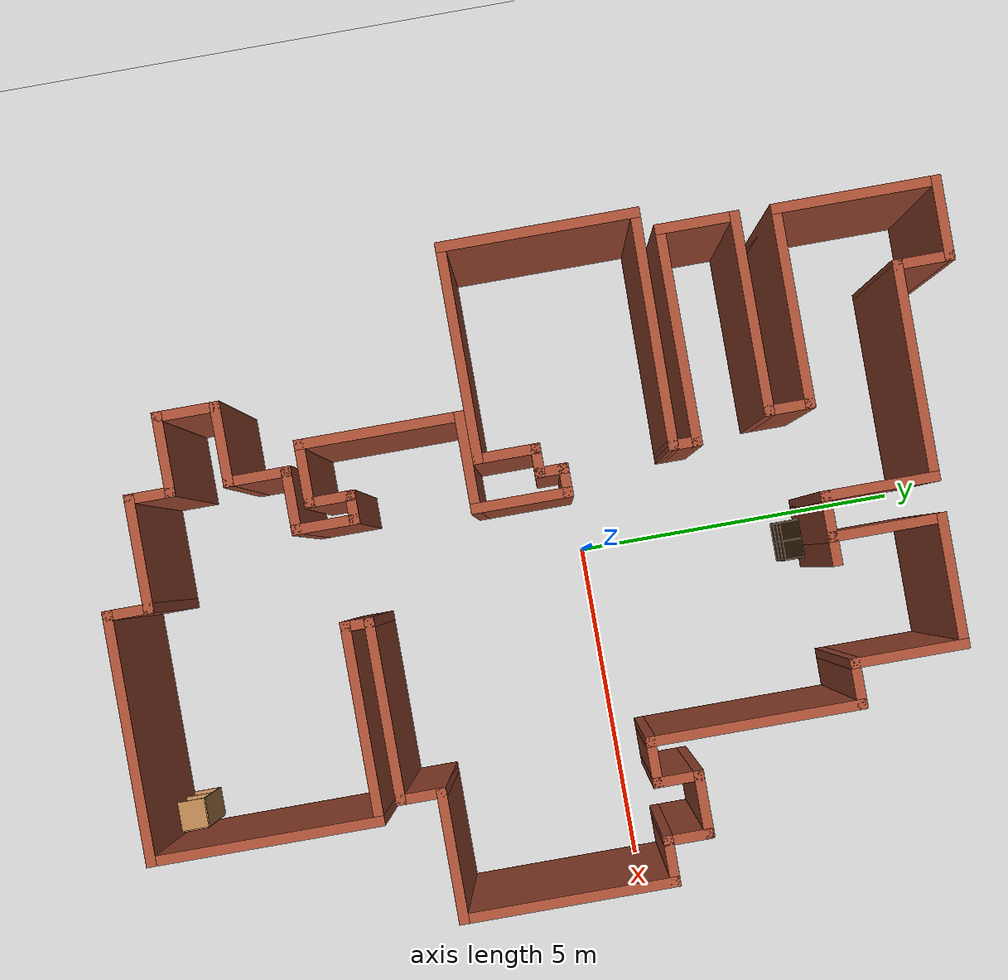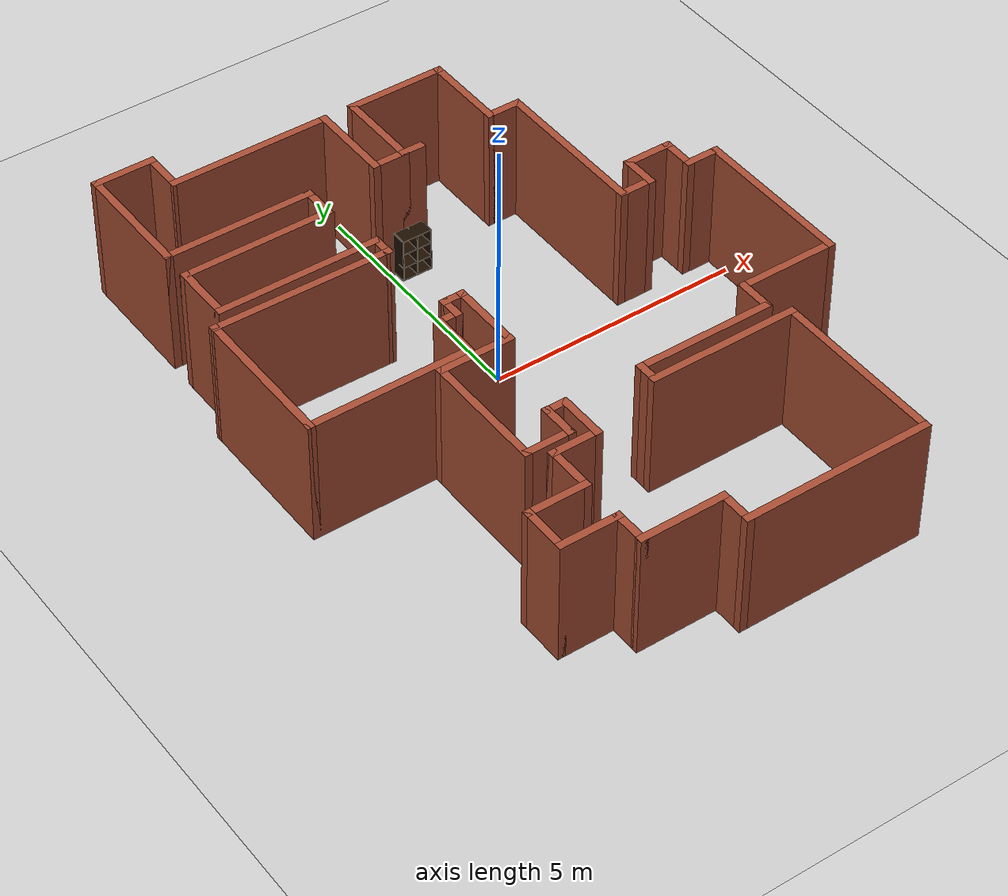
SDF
<sdf version="1.6">
 <world name="default">
  <light name="sun" type="directional">
   <pose>0 0 10 0 -0 0</pose>
   <diffuse>0.8 0.8 0.8 1</diffuse>
   <specular>0.2 0.2 0.2 1</specular>
   <attenuation>
    <range>1000</range>
    <constant>0.9</constant>
    <linear>0.01</linear>
    <quadratic>0.001</quadratic>
   </attenuation>
   <direction>-0.5 0.1 -0.9</direction>
  </light>
  <model name="ground_plane">
   <static>1</static>
   <link name="link">
    <collision name="collision">
     <geometry><plane><normal>0 0 1</normal><size>100 100</size></plane></geometry>
     <surface>
      <contact><collide_bitmask>65535</collide_bitmask></contact>
      <friction><ode><mu>100</mu><mu2>50</mu2></ode></friction>
     </surface>
    </collision>
    <visual name="visual">
     <cast_shadows>0</cast_shadows>
     <geometry><plane><normal>0 0 1</normal><size>100 100</size></plane></geometry>
     <material>
      <script><uri>file://media/materials/scripts/gazebo.material</uri><name>Gazebo/Grey</name></script>
     </material>
    </visual>
   </link>
  </model>
  <gravity>0 0 -9.8</gravity>
  <magnetic_field>6e-06 2.3e-05 -4.2e-05</magnetic_field>
  <atmosphere type="adiabatic"/>
  <physics name="default_physics" default="0" type="ode">
   <max_step_size>0.001</max_step_size>
   <real_time_factor>1</real_time_factor>
   <real_time_update_rate>1000</real_time_update_rate>
  </physics>
  <scene><ambient>0.4 0.4 0.4 1</ambient><background>0.7 0.7 0.7 1</background><shadows>1</shadows></scene>
  <audio><device>default</device></audio>
  <spherical_coordinates>
   <surface_model>EARTH_WGS84</surface_model>
   <latitude_deg>0</latitude_deg>
   <longitude_deg>0</longitude_deg>
   <elevation>0</elevation>
   <heading_deg>0</heading_deg>
  </spherical_coordinates>
  <model name="map_97">
   <pose>0.167604 -0.539188 0 0 -0 0</pose>
   <link name="Wall_0">
    <collision name="Wall_0_Collision">
     <geometry><box><size>1.25 0.15 2.5</size></box></geometry>
     <pose>0 0 1.25 0 -0 0</pose>
    </collision>
    <visual name="Wall_0_Visual">
     <pose>0 0 1.25 0 -0 0</pose>
     <geometry><box><size>1.25 0.15 2.5</size></box></geometry>
     <material>
      <script><uri>file://media/materials/scripts/gazebo.material</uri><name>Gazebo/Bricks</name></script>
      <ambient>1 1 1 1</ambient>
     </material>
     <meta><layer>0</layer></meta>
    </visual>
    <pose>-3.952 6.4311 0 0 -0 3.14159</pose>
   </link>
   <link name="Wall_1">
    <collision name="Wall_1_Collision">
     <geometry><box><size>2.5 0.15 2.5</size></box></geometry>
     <pose>0 0 1.25 0 -0 0</pose>
    </collision>
    <visual name="Wall_1_Visual">
     <pose>0 0 1.25 0 -0 0</pose>
     <geometry><box><size>2.5 0.15 2.5</size></box></geometry>
     <material>
      <script><uri>file://media/materials/scripts/gazebo.material</uri><name>Gazebo/Bricks</name></script>
      <ambient>1 1 1 1</ambient>
     </material>
     <meta><layer>0</layer></meta>
    </visual>
    <pose>-4.502 5.2561 0 0 -0 -1.5708</pose>
   </link>
   <link name="Wall_2">
    <collision name="Wall_2_Collision">
     <geometry><box><size>3 0.15 2.5</size></box></geometry>
     <pose>0 0 1.25 0 -0 0</pose>
    </collision>
    <visual name="Wall_2_Visual">
     <pose>0 0 1.25 0 -0 0</pose>
     <geometry><box><size>3 0.15 2.5</size></box></geometry>
     <material>
      <script><uri>file://media/materials/scripts/gazebo.material</uri><name>Gazebo/Bricks</name></script>
      <ambient>1 1 1 1</ambient>
     </material>
     <meta><layer>0</layer></meta>
    </visual>
    <pose>-3.077 4.0811 0 0 -0 0</pose>
   </link>
   <link name="Wall_20">
    <collision name="Wall_20_Collision">
     <geometry><box><size>3 0.15 2.5</size></box></geometry>
     <pose>0 0 1.25 0 -0 0</pose>
    </collision>
    <visual name="Wall_20_Visual">
     <pose>0 0 1.25 0 -0 0</pose>
     <geometry><box><size>3 0.15 2.5</size></box></geometry>
     <material>
      <script><uri>file://media/materials/scripts/gazebo.material</uri><name>Gazebo/Bricks</name></script>
      <ambient>1 1 1 1</ambient>
     </material>
     <meta><layer>0</layer></meta>
    </visual>
    <pose>-4.79959 0.643665 0 0 -0 -1.5708</pose>
   </link>
   <link name="Wall_21">
    <collision name="Wall_21_Collision">
     <geometry><box><size>3.25 0.15 2.5</size></box></geometry>
     <pose>0 0 1.25 0 -0 0</pose>
    </collision>
    <visual name="Wall_21_Visual">
     <pose>0 0 1.25 0 -0 0</pose>
     <geometry><box><size>3.25 0.15 2.5</size></box></geometry>
     <material>
      <script><uri>file://media/materials/scripts/gazebo.material</uri><name>Gazebo/Bricks</name></script>
      <ambient>1 1 1 1</ambient>
     </material>
     <meta><layer>0</layer></meta>
    </visual>
    <pose>-3.24959 -0.781335 0 0 -0 0</pose>
   </link>
   <link name="Wall_22">
    <collision name="Wall_22_Collision">
     <geometry><box><size>1 0.15 2.5</size></box></geometry>
     <pose>0 0 1.25 0 -0 0</pose>
    </collision>
    <visual name="Wall_22_Visual">
     <pose>0 0 1.25 0 -0 0</pose>
     <geometry><box><size>1 0.15 2.5</size></box></geometry>
     <material>
      <script><uri>file://media/materials/scripts/gazebo.material</uri><name>Gazebo/Bricks</name></script>
      <ambient>1 1 1 1</ambient>
     </material>
     <meta><layer>0</layer></meta>
    </visual>
    <pose>-1.69959 -0.356335 0 0 -0 1.5708</pose>
   </link>
   <link name="Wall_23">
    <collision name="Wall_23_Collision">
     <geometry><box><size>0.5 0.15 2.5</size></box></geometry>
     <pose>0 0 1.25 0 -0 0</pose>
    </collision>
    <visual name="Wall_23_Visual">
     <pose>0 0 1.25 0 -0 0</pose>
     <geometry><box><size>0.5 0.15 2.5</size></box></geometry>
     <material>
      <script><uri>file://media/materials/scripts/gazebo.material</uri><name>Gazebo/Bricks</name></script>
      <ambient>1 1 1 1</ambient>
     </material>
     <meta><layer>0</layer></meta>
    </visual>
    <pose>-1.52459 0.068665 0 0 -0 0</pose>
   </link>
   <link name="Wall_26">
    <collision name="Wall_26_Collision">
     <geometry><box><size>0.5 0.15 2.5</size></box></geometry>
     <pose>0 0 1.25 0 -0 0</pose>
    </collision>
    <visual name="Wall_26_Visual">
     <pose>0 0 1.25 0 -0 0</pose>
     <geometry><box><size>0.5 0.15 2.5</size></box></geometry>
     <material>
      <script><uri>file://media/materials/scripts/gazebo.material</uri><name>Gazebo/Bricks</name></script>
      <ambient>1 1 1 1</ambient>
     </material>
     <meta><layer>0</layer></meta>
    </visual>
    <pose>-1.34959 0.243665 0 0 -0 1.5708</pose>
   </link>
   <link name="Wall_27">
    <collision name="Wall_27_Collision">
     <geometry><box><size>0.5 0.15 2.5</size></box></geometry>
     <pose>0 0 1.25 0 -0 0</pose>
    </collision>
    <visual name="Wall_27_Visual">
     <pose>0 0 1.25 0 -0 0</pose>
     <geometry><box><size>0.5 0.15 2.5</size></box></geometry>
     <material>
      <script><uri>file://media/materials/scripts/gazebo.material</uri><name>Gazebo/Bricks</name></script>
      <ambient>1 1 1 1</ambient>
     </material>
     <meta><layer>0</layer></meta>
    </visual>
    <pose>-1.17459 0.418665 0 0 -0 0</pose>
   </link>
   <link name="Wall_28">
    <collision name="Wall_28_Collision">
     <geometry><box><size>1.5 0.15 2.5</size></box></geometry>
     <pose>0 0 1.25 0 -0 0</pose>
    </collision>
    <visual name="Wall_28_Visual">
     <pose>0 0 1.25 0 -0 0</pose>
     <geometry><box><size>1.5 0.15 2.5</size></box></geometry>
     <material>
      <script><uri>file://media/materials/scripts/gazebo.material</uri><name>Gazebo/Bricks</name></script>
      <ambient>1 1 1 1</ambient>
     </material>
     <meta><layer>0</layer></meta>
    </visual>
    <pose>-0.999588 -0.256335 0 0 -0 -1.5708</pose>
   </link>
   <link name="Wall_29">
    <collision name="Wall_29_Collision">
     <geometry><box><size>1.5 0.15 2.5</size></box></geometry>
     <pose>0 0 1.25 0 -0 0</pose>
    </collision>
    <visual name="Wall_29_Visual">
     <pose>0 0 1.25 0 -0 0</pose>
     <geometry><box><size>1.5 0.15 2.5</size></box></geometry>
     <material>
      <script><uri>file://media/materials/scripts/gazebo.material</uri><name>Gazebo/Bricks</name></script>
      <ambient>1 1 1 1</ambient>
     </material>
     <meta><layer>0</layer></meta>
    </visual>
    <pose>-1.67459 -0.931335 0 0 -0 3.14159</pose>
   </link>
   <link name="Wall_3">
    <collision name="Wall_3_Collision">
     <geometry><box><size>0.75 0.15 2.5</size></box></geometry>
     <pose>0 0 1.25 0 -0 0</pose>
    </collision>
    <visual name="Wall_3_Visual">
     <pose>0 0 1.25 0 -0 0</pose>
     <geometry><box><size>0.75 0.15 2.5</size></box></geometry>
     <material>
      <script><uri>file://media/materials/scripts/gazebo.material</uri><name>Gazebo/Bricks</name></script>
      <ambient>1 1 1 1</ambient>
     </material>
     <meta><layer>0</layer></meta>
    </visual>
    <pose>-1.652 3.7811 0 0 -0 -1.5708</pose>
   </link>
   <link name="Wall_30">
    <collision name="Wall_30_Collision">
     <geometry><box><size>2.5 0.15 2.5</size></box></geometry>
     <pose>0 0 1.25 0 -0 0</pose>
    </collision>
    <visual name="Wall_30_Visual">
     <pose>0 0 1.25 0 -0 0</pose>
     <geometry><box><size>2.5 0.15 2.5</size></box></geometry>
     <material>
      <script><uri>file://media/materials/scripts/gazebo.material</uri><name>Gazebo/Bricks</name></script>
      <ambient>1 1 1 1</ambient>
     </material>
     <meta><layer>0</layer></meta>
    </visual>
    <pose>-2.34959 -2.10634 0 0 -0 -1.5708</pose>
   </link>
   <link name="Wall_31">
    <collision name="Wall_31_Collision">
     <geometry><box><size>1 0.15 2.5</size></box></geometry>
     <pose>0 0 1.25 0 -0 0</pose>
    </collision>
    <visual name="Wall_31_Visual">
     <pose>0 0 1.25 0 -0 0</pose>
     <geometry><box><size>1 0.15 2.5</size></box></geometry>
     <material>
      <script><uri>file://media/materials/scripts/gazebo.material</uri><name>Gazebo/Bricks</name></script>
      <ambient>1 1 1 1</ambient>
     </material>
     <meta><layer>0</layer></meta>
    </visual>
    <pose>-1.92459 -3.28133 0 0 -0 0</pose>
   </link>
   <link name="Wall_32">
    <collision name="Wall_32_Collision">
     <geometry><box><size>0.75 0.15 2.5</size></box></geometry>
     <pose>0 0 1.25 0 -0 0</pose>
    </collision>
    <visual name="Wall_32_Visual">
     <pose>0 0 1.25 0 -0 0</pose>
     <geometry><box><size>0.75 0.15 2.5</size></box></geometry>
     <material>
      <script><uri>file://media/materials/scripts/gazebo.material</uri><name>Gazebo/Bricks</name></script>
      <ambient>1 1 1 1</ambient>
     </material>
     <meta><layer>0</layer></meta>
    </visual>
    <pose>-1.49959 -2.98134 0 0 -0 1.5708</pose>
   </link>
   <link name="Wall_33">
    <collision name="Wall_33_Collision">
     <geometry><box><size>0.5 0.15 2.5</size></box></geometry>
     <pose>0 0 1.25 0 -0 0</pose>
    </collision>
    <visual name="Wall_33_Visual">
     <pose>0 0 1.25 0 -0 0</pose>
     <geometry><box><size>0.5 0.15 2.5</size></box></geometry>
     <material>
      <script><uri>file://media/materials/scripts/gazebo.material</uri><name>Gazebo/Bricks</name></script>
      <ambient>1 1 1 1</ambient>
     </material>
     <meta><layer>0</layer></meta>
    </visual>
    <pose>-1.32459 -2.68133 0 0 -0 0</pose>
   </link>
   <link name="Wall_34">
    <collision name="Wall_34_Collision">
     <geometry><box><size>1 0.15 2.5</size></box></geometry>
     <pose>0 0 1.25 0 -0 0</pose>
    </collision>
    <visual name="Wall_34_Visual">
     <pose>0 0 1.25 0 -0 0</pose>
     <geometry><box><size>1 0.15 2.5</size></box></geometry>
     <material>
      <script><uri>file://media/materials/scripts/gazebo.material</uri><name>Gazebo/Bricks</name></script>
      <ambient>1 1 1 1</ambient>
     </material>
     <meta><layer>0</layer></meta>
    </visual>
    <pose>-1.14959 -3.10634 0 0 -0 -1.5708</pose>
   </link>
   <link name="Wall_35">
    <collision name="Wall_35_Collision">
     <geometry><box><size>1 0.15 2.5</size></box></geometry>
     <pose>0 0 1.25 0 -0 0</pose>
    </collision>
    <visual name="Wall_35_Visual">
     <pose>0 0 1.25 0 -0 0</pose>
     <geometry><box><size>1 0.15 2.5</size></box></geometry>
     <material>
      <script><uri>file://media/materials/scripts/gazebo.material</uri><name>Gazebo/Bricks</name></script>
      <ambient>1 1 1 1</ambient>
     </material>
     <meta><layer>0</layer></meta>
    </visual>
    <pose>-1.57459 -3.53133 0 0 -0 3.14159</pose>
   </link>
   <link name="Wall_36">
    <collision name="Wall_36_Collision">
     <geometry><box><size>1 0.15 2.5</size></box></geometry>
     <pose>0 0 1.25 0 -0 0</pose>
    </collision>
    <visual name="Wall_36_Visual">
     <pose>0 0 1.25 0 -0 0</pose>
     <geometry><box><size>1 0.15 2.5</size></box></geometry>
     <material>
      <script><uri>file://media/materials/scripts/gazebo.material</uri><name>Gazebo/Bricks</name></script>
      <ambient>1 1 1 1</ambient>
     </material>
     <meta><layer>0</layer></meta>
    </visual>
    <pose>-1.99959 -3.95634 0 0 -0 -1.5708</pose>
   </link>
   <link name="Wall_37">
    <collision name="Wall_37_Collision">
     <geometry><box><size>1.25 0.15 2.5</size></box></geometry>
     <pose>0 0 1.25 0 -0 0</pose>
    </collision>
    <visual name="Wall_37_Visual">
     <pose>0 0 1.25 0 -0 0</pose>
     <geometry><box><size>1.25 0.15 2.5</size></box></geometry>
     <material>
      <script><uri>file://media/materials/scripts/gazebo.material</uri><name>Gazebo/Bricks</name></script>
      <ambient>1 1 1 1</ambient>
     </material>
     <meta><layer>0</layer></meta>
    </visual>
    <pose>-2.54959 -4.38133 0 0 -0 3.14159</pose>
   </link>
   <link name="Wall_38">
    <collision name="Wall_38_Collision">
     <geometry><box><size>1 0.15 2.5</size></box></geometry>
     <pose>0 0 1.25 0 -0 0</pose>
    </collision>
    <visual name="Wall_38_Visual">
     <pose>0 0 1.25 0 -0 0</pose>
     <geometry><box><size>1 0.15 2.5</size></box></geometry>
     <material>
      <script><uri>file://media/materials/scripts/gazebo.material</uri><name>Gazebo/Bricks</name></script>
      <ambient>1 1 1 1</ambient>
     </material>
     <meta><layer>0</layer></meta>
    </visual>
    <pose>-3.09959 -4.80633 0 0 -0 -1.5708</pose>
   </link>
   <link name="Wall_39">
    <collision name="Wall_39_Collision">
     <geometry><box><size>1.25 0.15 2.5</size></box></geometry>
     <pose>0 0 1.25 0 -0 0</pose>
    </collision>
    <visual name="Wall_39_Visual">
     <pose>0 0 1.25 0 -0 0</pose>
     <geometry><box><size>1.25 0.15 2.5</size></box></geometry>
     <material>
      <script><uri>file://media/materials/scripts/gazebo.material</uri><name>Gazebo/Bricks</name></script>
      <ambient>1 1 1 1</ambient>
     </material>
     <meta><layer>0</layer></meta>
    </visual>
    <pose>-2.54959 -5.23133 0 0 -0 0</pose>
   </link>
   <link name="Wall_4">
    <collision name="Wall_4_Collision">
     <geometry><box><size>3 0.15 2.5</size></box></geometry>
     <pose>0 0 1.25 0 -0 0</pose>
    </collision>
    <visual name="Wall_4_Visual">
     <pose>0 0 1.25 0 -0 0</pose>
     <geometry><box><size>3 0.15 2.5</size></box></geometry>
     <material>
      <script><uri>file://media/materials/scripts/gazebo.material</uri><name>Gazebo/Bricks</name></script>
      <ambient>1 1 1 1</ambient>
     </material>
     <meta><layer>0</layer></meta>
    </visual>
    <pose>-3.077 3.4811 0 0 -0 3.14159</pose>
   </link>
   <link name="Wall_42">
    <collision name="Wall_42_Collision">
     <geometry><box><size>0.75 0.15 2.5</size></box></geometry>
     <pose>0 0 1.25 0 -0 0</pose>
    </collision>
    <visual name="Wall_42_Visual">
     <pose>0 0 1.25 0 -0 0</pose>
     <geometry><box><size>0.75 0.15 2.5</size></box></geometry>
     <material>
      <script><uri>file://media/materials/scripts/gazebo.material</uri><name>Gazebo/Bricks</name></script>
      <ambient>1 1 1 1</ambient>
     </material>
     <meta><layer>0</layer></meta>
    </visual>
    <pose>-1.99959 -5.53134 0 0 -0 -1.5708</pose>
   </link>
   <link name="Wall_43">
    <collision name="Wall_43_Collision">
     <geometry><box><size>1.75 0.15 2.5</size></box></geometry>
     <pose>0 0 1.25 0 -0 0</pose>
    </collision>
    <visual name="Wall_43_Visual">
     <pose>0 0 1.25 0 -0 0</pose>
     <geometry><box><size>1.75 0.15 2.5</size></box></geometry>
     <material>
      <script><uri>file://media/materials/scripts/gazebo.material</uri><name>Gazebo/Bricks</name></script>
      <ambient>1 1 1 1</ambient>
     </material>
     <meta><layer>0</layer></meta>
    </visual>
    <pose>-1.19959 -5.83134 0 0 -0 0</pose>
   </link>
   <link name="Wall_44">
    <collision name="Wall_44_Collision">
     <geometry><box><size>0.75 0.15 2.5</size></box></geometry>
     <pose>0 0 1.25 0 -0 0</pose>
    </collision>
    <visual name="Wall_44_Visual">
     <pose>0 0 1.25 0 -0 0</pose>
     <geometry><box><size>0.75 0.15 2.5</size></box></geometry>
     <material>
      <script><uri>file://media/materials/scripts/gazebo.material</uri><name>Gazebo/Bricks</name></script>
      <ambient>1 1 1 1</ambient>
     </material>
     <meta><layer>0</layer></meta>
    </visual>
    <pose>-0.399588 -6.13133 0 0 -0 -1.5708</pose>
   </link>
   <link name="Wall_45">
    <collision name="Wall_45_Collision">
     <geometry><box><size>3.75 0.15 2.5</size></box></geometry>
     <pose>0 0 1.25 0 -0 0</pose>
    </collision>
    <visual name="Wall_45_Visual">
     <pose>0 0 1.25 0 -0 0</pose>
     <geometry><box><size>3.75 0.15 2.5</size></box></geometry>
     <material>
      <script><uri>file://media/materials/scripts/gazebo.material</uri><name>Gazebo/Bricks</name></script>
      <ambient>1 1 1 1</ambient>
     </material>
     <meta><layer>0</layer></meta>
    </visual>
    <pose>1.40041 -6.43133 0 0 -0 0</pose>
   </link>
   <link name="Wall_46">
    <collision name="Wall_46_Collision">
     <geometry><box><size>3.5 0.15 2.5</size></box></geometry>
     <pose>0 0 1.25 0 -0 0</pose>
    </collision>
    <visual name="Wall_46_Visual">
     <pose>0 0 1.25 0 -0 0</pose>
     <geometry><box><size>3.5 0.15 2.5</size></box></geometry>
     <material>
      <script><uri>file://media/materials/scripts/gazebo.material</uri><name>Gazebo/Bricks</name></script>
      <ambient>1 1 1 1</ambient>
     </material>
     <meta><layer>0</layer></meta>
    </visual>
    <pose>3.20041 -4.75633 0 0 -0 1.5708</pose>
   </link>
   <link name="Wall_47">
    <collision name="Wall_47_Collision">
     <geometry><box><size>3 0.15 2.5</size></box></geometry>
     <pose>0 0 1.25 0 -0 0</pose>
    </collision>
    <visual name="Wall_47_Visual">
     <pose>0 0 1.25 0 -0 0</pose>
     <geometry><box><size>3 0.15 2.5</size></box></geometry>
     <material>
      <script><uri>file://media/materials/scripts/gazebo.material</uri><name>Gazebo/Bricks</name></script>
      <ambient>1 1 1 1</ambient>
     </material>
     <meta><layer>0</layer></meta>
    </visual>
    <pose>1.77541 -3.08134 0 0 -0 3.14159</pose>
   </link>
   <link name="Wall_48">
    <collision name="Wall_48_Collision">
     <geometry><box><size>0.5 0.15 2.5</size></box></geometry>
     <pose>0 0 1.25 0 -0 0</pose>
    </collision>
    <visual name="Wall_48_Visual">
     <pose>0 0 1.25 0 -0 0</pose>
     <geometry><box><size>0.5 0.15 2.5</size></box></geometry>
     <material>
      <script><uri>file://media/materials/scripts/gazebo.material</uri><name>Gazebo/Bricks</name></script>
      <ambient>1 1 1 1</ambient>
     </material>
     <meta><layer>0</layer></meta>
    </visual>
    <pose>0.350412 -2.90633 0 0 -0 1.5708</pose>
   </link>
   <link name="Wall_49">
    <collision name="Wall_49_Collision">
     <geometry><box><size>2.75 0.15 2.5</size></box></geometry>
     <pose>0 0 1.25 0 -0 0</pose>
    </collision>
    <visual name="Wall_49_Visual">
     <pose>0 0 1.25 0 -0 0</pose>
     <geometry><box><size>2.75 0.15 2.5</size></box></geometry>
     <material>
      <script><uri>file://media/materials/scripts/gazebo.material</uri><name>Gazebo/Bricks</name></script>
      <ambient>1 1 1 1</ambient>
     </material>
     <meta><layer>0</layer></meta>
    </visual>
    <pose>1.65041 -2.73134 0 0 -0 0</pose>
   </link>
   <link name="Wall_5">
    <collision name="Wall_5_Collision">
     <geometry><box><size>1.25 0.15 2.5</size></box></geometry>
     <pose>0 0 1.25 0 -0 0</pose>
    </collision>
    <visual name="Wall_5_Visual">
     <pose>0 0 1.25 0 -0 0</pose>
     <geometry><box><size>1.25 0.15 2.5</size></box></geometry>
     <material>
      <script><uri>file://media/materials/scripts/gazebo.material</uri><name>Gazebo/Bricks</name></script>
      <ambient>1 1 1 1</ambient>
     </material>
     <meta><layer>0</layer></meta>
    </visual>
    <pose>-4.502 2.9311 0 0 -0 -1.5708</pose>
   </link>
   <link name="Wall_50">
    <collision name="Wall_50_Collision">
     <geometry><box><size>0.75 0.15 2.5</size></box></geometry>
     <pose>0 0 1.25 0 -0 0</pose>
    </collision>
    <visual name="Wall_50_Visual">
     <pose>0 0 1.25 0 -0 0</pose>
     <geometry><box><size>0.75 0.15 2.5</size></box></geometry>
     <material>
      <script><uri>file://media/materials/scripts/gazebo.material</uri><name>Gazebo/Bricks</name></script>
      <ambient>1 1 1 1</ambient>
     </material>
     <meta><layer>0</layer></meta>
    </visual>
    <pose>2.95041 -2.43133 0 0 -0 1.5708</pose>
   </link>
   <link name="Wall_51">
    <collision name="Wall_51_Collision">
     <geometry><box><size>2 0.15 2.5</size></box></geometry>
     <pose>0 0 1.25 0 -0 0</pose>
    </collision>
    <visual name="Wall_51_Visual">
     <pose>0 0 1.25 0 -0 0</pose>
     <geometry><box><size>2 0.15 2.5</size></box></geometry>
     <material>
      <script><uri>file://media/materials/scripts/gazebo.material</uri><name>Gazebo/Bricks</name></script>
      <ambient>1 1 1 1</ambient>
     </material>
     <meta><layer>0</layer></meta>
    </visual>
    <pose>3.87541 -2.13133 0 0 -0 0</pose>
   </link>
   <link name="Wall_52">
    <collision name="Wall_52_Collision">
     <geometry><box><size>3.25 0.15 2.5</size></box></geometry>
     <pose>0 0 1.25 0 -0 0</pose>
    </collision>
    <visual name="Wall_52_Visual">
     <pose>0 0 1.25 0 -0 0</pose>
     <geometry><box><size>3.25 0.15 2.5</size></box></geometry>
     <material>
      <script><uri>file://media/materials/scripts/gazebo.material</uri><name>Gazebo/Bricks</name></script>
      <ambient>1 1 1 1</ambient>
     </material>
     <meta><layer>0</layer></meta>
    </visual>
    <pose>4.80041 -0.581335 0 0 -0 1.5708</pose>
   </link>
   <link name="Wall_53">
    <collision name="Wall_53_Collision">
     <geometry><box><size>0.75 0.15 2.5</size></box></geometry>
     <pose>0 0 1.25 0 -0 0</pose>
    </collision>
    <visual name="Wall_53_Visual">
     <pose>0 0 1.25 0 -0 0</pose>
     <geometry><box><size>0.75 0.15 2.5</size></box></geometry>
     <material>
      <script><uri>file://media/materials/scripts/gazebo.material</uri><name>Gazebo/Bricks</name></script>
      <ambient>1 1 1 1</ambient>
     </material>
     <meta><layer>0</layer></meta>
    </visual>
    <pose>4.50041 0.968665 0 0 -0 3.14159</pose>
   </link>
   <link name="Wall_54">
    <collision name="Wall_54_Collision">
     <geometry><box><size>0.75 0.15 2.5</size></box></geometry>
     <pose>0 0 1.25 0 -0 0</pose>
    </collision>
    <visual name="Wall_54_Visual">
     <pose>0 0 1.25 0 -0 0</pose>
     <geometry><box><size>0.75 0.15 2.5</size></box></geometry>
     <material>
      <script><uri>file://media/materials/scripts/gazebo.material</uri><name>Gazebo/Bricks</name></script>
      <ambient>1 1 1 1</ambient>
     </material>
     <meta><layer>0</layer></meta>
    </visual>
    <pose>4.20041 1.26866 0 0 -0 1.5708</pose>
   </link>
   <link name="Wall_55">
    <collision name="Wall_55_Collision">
     <geometry><box><size>1 0.15 2.5</size></box></geometry>
     <pose>0 0 1.25 0 -0 0</pose>
    </collision>
    <visual name="Wall_55_Visual">
     <pose>0 0 1.25 0 -0 0</pose>
     <geometry><box><size>1 0.15 2.5</size></box></geometry>
     <material>
      <script><uri>file://media/materials/scripts/gazebo.material</uri><name>Gazebo/Bricks</name></script>
      <ambient>1 1 1 1</ambient>
     </material>
     <meta><layer>0</layer></meta>
    </visual>
    <pose>3.77541 1.56866 0 0 -0 3.14159</pose>
   </link>
   <link name="Wall_56">
    <collision name="Wall_56_Collision">
     <geometry><box><size>0.75 0.15 2.5</size></box></geometry>
     <pose>0 0 1.25 0 -0 0</pose>
    </collision>
    <visual name="Wall_56_Visual">
     <pose>0 0 1.25 0 -0 0</pose>
     <geometry><box><size>0.75 0.15 2.5</size></box></geometry>
     <material>
      <script><uri>file://media/materials/scripts/gazebo.material</uri><name>Gazebo/Bricks</name></script>
      <ambient>1 1 1 1</ambient>
     </material>
     <meta><layer>0</layer></meta>
    </visual>
    <pose>3.35041 1.26866 0 0 -0 -1.5708</pose>
   </link>
   <link name="Wall_57">
    <collision name="Wall_57_Collision">
     <geometry><box><size>0.75 0.15 2.5</size></box></geometry>
     <pose>0 0 1.25 0 -0 0</pose>
    </collision>
    <visual name="Wall_57_Visual">
     <pose>0 0 1.25 0 -0 0</pose>
     <geometry><box><size>0.75 0.15 2.5</size></box></geometry>
     <material>
      <script><uri>file://media/materials/scripts/gazebo.material</uri><name>Gazebo/Bricks</name></script>
      <ambient>1 1 1 1</ambient>
     </material>
     <meta><layer>0</layer></meta>
    </visual>
    <pose>3.05041 0.968665 0 0 -0 3.14159</pose>
   </link>
   <link name="Wall_58">
    <collision name="Wall_58_Collision">
     <geometry><box><size>3.25 0.15 2.5</size></box></geometry>
     <pose>0 0 1.25 0 -0 0</pose>
    </collision>
    <visual name="Wall_58_Visual">
     <pose>0 0 1.25 0 -0 0</pose>
     <geometry><box><size>3.25 0.15 2.5</size></box></geometry>
     <material>
      <script><uri>file://media/materials/scripts/gazebo.material</uri><name>Gazebo/Bricks</name></script>
      <ambient>1 1 1 1</ambient>
     </material>
     <meta><layer>0</layer></meta>
    </visual>
    <pose>2.75041 2.51866 0 0 -0 1.5708</pose>
   </link>
   <link name="Wall_59">
    <collision name="Wall_59_Collision">
     <geometry><box><size>0.75 0.15 2.5</size></box></geometry>
     <pose>0 0 1.25 0 -0 0</pose>
    </collision>
    <visual name="Wall_59_Visual">
     <pose>0 0 1.25 0 -0 0</pose>
     <geometry><box><size>0.75 0.15 2.5</size></box></geometry>
     <material>
      <script><uri>file://media/materials/scripts/gazebo.material</uri><name>Gazebo/Bricks</name></script>
      <ambient>1 1 1 1</ambient>
     </material>
     <meta><layer>0</layer></meta>
    </visual>
    <pose>2.45041 4.06867 0 0 -0 3.14159</pose>
   </link>
   <link name="Wall_6">
    <collision name="Wall_6_Collision">
     <geometry><box><size>3.25 0.15 2.5</size></box></geometry>
     <pose>0 0 1.25 0 -0 0</pose>
    </collision>
    <visual name="Wall_6_Visual">
     <pose>0 0 1.25 0 -0 0</pose>
     <geometry><box><size>3.25 0.15 2.5</size></box></geometry>
     <material>
      <script><uri>file://media/materials/scripts/gazebo.material</uri><name>Gazebo/Bricks</name></script>
      <ambient>1 1 1 1</ambient>
     </material>
     <meta><layer>0</layer></meta>
    </visual>
    <pose>-2.952 2.3811 0 0 -0 0</pose>
   </link>
   <link name="Wall_60">
    <collision name="Wall_60_Collision">
     <geometry><box><size>1.75 0.15 2.5</size></box></geometry>
     <pose>0 0 1.25 0 -0 0</pose>
    </collision>
    <visual name="Wall_60_Visual">
     <pose>0 0 1.25 0 -0 0</pose>
     <geometry><box><size>1.75 0.15 2.5</size></box></geometry>
     <material>
      <script><uri>file://media/materials/scripts/gazebo.material</uri><name>Gazebo/Bricks</name></script>
      <ambient>1 1 1 1</ambient>
     </material>
     <meta><layer>0</layer></meta>
    </visual>
    <pose>2.15041 4.86867 0 0 -0 1.5708</pose>
   </link>
   <link name="Wall_61">
    <collision name="Wall_61_Collision">
     <geometry><box><size>2 0.15 2.5</size></box></geometry>
     <pose>0 0 1.25 0 -0 0</pose>
    </collision>
    <visual name="Wall_61_Visual">
     <pose>0 0 1.25 0 -0 0</pose>
     <geometry><box><size>2 0.15 2.5</size></box></geometry>
     <material>
      <script><uri>file://media/materials/scripts/gazebo.material</uri><name>Gazebo/Bricks</name></script>
      <ambient>1 1 1 1</ambient>
     </material>
     <meta><layer>0</layer></meta>
    </visual>
    <pose>1.22541 5.66866 0 0 -0 3.14159</pose>
   </link>
   <link name="Wall_62">
    <collision name="Wall_62_Collision">
     <geometry><box><size>1.75 0.15 2.5</size></box></geometry>
     <pose>0 0 1.25 0 -0 0</pose>
    </collision>
    <visual name="Wall_62_Visual">
     <pose>0 0 1.25 0 -0 0</pose>
     <geometry><box><size>1.75 0.15 2.5</size></box></geometry>
     <material>
      <script><uri>file://media/materials/scripts/gazebo.material</uri><name>Gazebo/Bricks</name></script>
      <ambient>1 1 1 1</ambient>
     </material>
     <meta><layer>0</layer></meta>
    </visual>
    <pose>0.300412 4.86867 0 0 -0 -1.5708</pose>
   </link>
   <link name="Wall_63">
    <collision name="Wall_63_Collision">
     <geometry><box><size>0.75 0.15 2.5</size></box></geometry>
     <pose>0 0 1.25 0 -0 0</pose>
    </collision>
    <visual name="Wall_63_Visual">
     <pose>0 0 1.25 0 -0 0</pose>
     <geometry><box><size>0.75 0.15 2.5</size></box></geometry>
     <material>
      <script><uri>file://media/materials/scripts/gazebo.material</uri><name>Gazebo/Bricks</name></script>
      <ambient>1 1 1 1</ambient>
     </material>
     <meta><layer>0</layer></meta>
    </visual>
    <pose>0.000412 4.06867 0 0 -0 3.14159</pose>
   </link>
   <link name="Wall_64">
    <collision name="Wall_64_Collision">
     <geometry><box><size>1.75 0.15 2.5</size></box></geometry>
     <pose>0 0 1.25 0 -0 0</pose>
    </collision>
    <visual name="Wall_64_Visual">
     <pose>0 0 1.25 0 -0 0</pose>
     <geometry><box><size>1.75 0.15 2.5</size></box></geometry>
     <material>
      <script><uri>file://media/materials/scripts/gazebo.material</uri><name>Gazebo/Bricks</name></script>
      <ambient>1 1 1 1</ambient>
     </material>
     <meta><layer>0</layer></meta>
    </visual>
    <pose>-0.299588 4.86867 0 0 -0 1.5708</pose>
   </link>
   <link name="Wall_67">
    <collision name="Wall_67_Collision">
     <geometry><box><size>3.25 0.15 2.5</size></box></geometry>
     <pose>0 0 1.25 0 -0 0</pose>
    </collision>
    <visual name="Wall_67_Visual">
     <pose>0 0 1.25 0 -0 0</pose>
     <geometry><box><size>3.25 0.15 2.5</size></box></geometry>
     <material>
      <script><uri>file://media/materials/scripts/gazebo.material</uri><name>Gazebo/Bricks</name></script>
      <ambient>1 1 1 1</ambient>
     </material>
     <meta><layer>0</layer></meta>
    </visual>
    <pose>-1.84959 5.66866 0 0 -0 3.14159</pose>
   </link>
   <link name="Wall_68">
    <collision name="Wall_68_Collision">
     <geometry><box><size>0.912436 0.15 2.5</size></box></geometry>
     <pose>0 0 1.25 0 -0 0</pose>
    </collision>
    <visual name="Wall_68_Visual">
     <pose>0 0 1.25 0 -0 0</pose>
     <geometry><box><size>0.912436 0.15 2.5</size></box></geometry>
     <material>
      <script><uri>file://media/materials/scripts/gazebo.material</uri><name>Gazebo/Bricks</name></script>
      <ambient>1 1 1 1</ambient>
     </material>
     <meta><layer>0</layer></meta>
    </visual>
    <pose>-3.40079 6.04988 0 0 -0 1.57396</pose>
   </link>
   <link name="Wall_7">
    <collision name="Wall_7_Collision">
     <geometry><box><size>0.5 0.15 2.5</size></box></geometry>
     <pose>0 0 1.25 0 -0 0</pose>
    </collision>
    <visual name="Wall_7_Visual">
     <pose>0 0 1.25 0 -0 0</pose>
     <geometry><box><size>0.5 0.15 2.5</size></box></geometry>
     <material>
      <script><uri>file://media/materials/scripts/gazebo.material</uri><name>Gazebo/Bricks</name></script>
      <ambient>1 1 1 1</ambient>
     </material>
     <meta><layer>0</layer></meta>
    </visual>
    <pose>-1.402 2.2061 0 0 -0 -1.5708</pose>
   </link>
   <link name="Wall_70">
    <collision name="Wall_70_Collision">
     <geometry><box><size>0.5 0.15 2.5</size></box></geometry>
     <pose>0 0 1.25 0 -0 0</pose>
    </collision>
    <visual name="Wall_70_Visual">
     <pose>0 0 1.25 0 -0 0</pose>
     <geometry><box><size>0.5 0.15 2.5</size></box></geometry>
     <material>
      <script><uri>file://media/materials/scripts/gazebo.material</uri><name>Gazebo/Bricks</name></script>
      <ambient>1 1 1 1</ambient>
     </material>
     <meta><layer>0</layer></meta>
    </visual>
    <pose>0.475412 4.06867 0 0 -0 0</pose>
   </link>
   <link name="Wall_72">
    <collision name="Wall_72_Collision">
     <geometry><box><size>3.54779 0.15 2.5</size></box></geometry>
     <pose>0 0 1.25 0 -0 0</pose>
    </collision>
    <visual name="Wall_72_Visual">
     <pose>0 0 1.25 0 -0 0</pose>
     <geometry><box><size>3.54779 0.15 2.5</size></box></geometry>
     <material>
      <script><uri>file://media/materials/scripts/gazebo.material</uri><name>Gazebo/Bricks</name></script>
      <ambient>1 1 1 1</ambient>
     </material>
     <meta><layer>0</layer></meta>
    </visual>
    <pose>-3.10079 2.04988 0 0 -0 -0.011057</pose>
   </link>
   <static>1</static>
  </model>
  <model name="6_Cube_StorageE">
   <link name="Wall_0">
    <pose>0 0 0.01 0 -0 0</pose>
    <inertial>
     <mass>1.6201</mass>
     <inertia><ixx>0.0119</ixx><iyy>0.0631</iyy><izz>0.0513</izz><ixy>0</ixy><ixz>0</ixz><iyz>0</iyz></inertia>
    </inertial>
    <collision name="Wall_0_Collision"><geometry><box><size>0.616 0.296 0.02</size></box></geometry></collision>
    <visual name="Wall_0_Visual">
     <geometry><box><size>0.616 0.296 0.02</size></box></geometry>
     <material>
      <script><uri>file://media/materials/scripts/gazebo.material</uri><name>Gazebo/Grey</name></script>
      <ambient>0.105882 0.0509804 0 1</ambient>
     </material>
    </visual>
   </link>
   <joint name="0_2" type="fixed">
    <pose>-0.308 0 0 0 -0 0</pose>
    <parent>Wall_2</parent>
    <child>Wall_0</child>
    <axis>
     <xyz>1 0 0</xyz>
     <use_parent_model_frame>0</use_parent_model_frame>
     <limit><lower>-1e+16</lower><upper>1e+16</upper></limit>
    </axis>
   </joint>
   <joint name="0_12" type="fixed">
    <parent>Wall_12</parent>
    <child>Wall_0</child>
    <axis>
     <xyz>0 0 1</xyz>
     <use_parent_model_frame>0</use_parent_model_frame>
     <limit><lower>-1e+16</lower><upper>1e+16</upper></limit>
    </axis>
   </joint>
   <joint name="0_4" type="fixed">
    <pose>0.308 0 0 0 -0 0</pose>
    <parent>Wall_4</parent>
    <child>Wall_0</child>
    <axis>
     <xyz>1 0 0</xyz>
     <use_parent_model_frame>0</use_parent_model_frame>
     <limit><lower>-1e+16</lower><upper>1e+16</upper></limit>
    </axis>
   </joint>
   <link name="Wall_10">
    <pose>0 0 0.61 0 -0 0</pose>
    <inertial>
     <mass>1.6201</mass>
     <inertia><ixx>0.0119</ixx><iyy>0.0631</iyy><izz>0.0513</izz><ixy>0</ixy><ixz>0</ixz><iyz>0</iyz></inertia>
    </inertial>
    <collision name="Wall_10_Collision"><geometry><box><size>0.616 0.296 0.02</size></box></geometry></collision>
    <visual name="Wall_10_Visual">
     <geometry><box><size>0.616 0.296 0.02</size></box></geometry>
     <material>
      <script><uri>file://media/materials/scripts/gazebo.material</uri><name>Gazebo/Grey</name></script>
      <ambient>0.105882 0.0509804 0 1</ambient>
     </material>
    </visual>
   </link>
   <joint name="10_2" type="fixed">
    <pose>-0.308 0 0 0 -0 0</pose>
    <parent>Wall_2</parent>
    <child>Wall_10</child>
    <axis>
     <xyz>1 0 0</xyz>
     <use_parent_model_frame>0</use_parent_model_frame>
     <limit><lower>-1e+16</lower><upper>1e+16</upper></limit>
    </axis>
   </joint>
   <joint name="10_12" type="fixed">
    <parent>Wall_12</parent>
    <child>Wall_10</child>
    <axis>
     <xyz>0 0 1</xyz>
     <use_parent_model_frame>0</use_parent_model_frame>
     <limit><lower>-1e+16</lower><upper>1e+16</upper></limit>
    </axis>
   </joint>
   <joint name="10_4" type="fixed">
    <pose>0.308 0 0 0 -0 0</pose>
    <parent>Wall_4</parent>
    <child>Wall_10</child>
    <axis>
     <xyz>1 0 0</xyz>
     <use_parent_model_frame>0</use_parent_model_frame>
     <limit><lower>-1e+16</lower><upper>1e+16</upper></limit>
    </axis>
   </joint>
   <link name="Wall_12">
    <pose>0 0 0.4575 0 -0 0</pose>
    <inertial>
     <mass>2.4065</mass>
     <inertia><ixx>0.0177</ixx><iyy>0.1855</iyy><izz>0.168</izz><ixy>0</ixy><ixz>0</ixz><iyz>0</iyz></inertia>
    </inertial>
    <collision name="Wall_12_Collision"><geometry><box><size>0.02 0.296 0.915</size></box></geometry></collision>
    <visual name="Wall_12_Visual">
     <geometry><box><size>0.02 0.296 0.915</size></box></geometry>
     <material>
      <script><uri>file://media/materials/scripts/gazebo.material</uri><name>Gazebo/Grey</name></script>
      <ambient>0.105882 0.0509804 0 1</ambient>
     </material>
    </visual>
   </link>
   <link name="Wall_2">
    <pose>-0.298 0 0.4575 0 -0 0</pose>
    <inertial>
     <mass>2.4065</mass>
     <inertia><ixx>0.0177</ixx><iyy>0.1855</iyy><izz>0.168</izz><ixy>0</ixy><ixz>0</ixz><iyz>0</iyz></inertia>
    </inertial>
    <collision name="Wall_2_Collision"><geometry><box><size>0.02 0.296 0.915</size></box></geometry></collision>
    <visual name="Wall_2_Visual">
     <geometry><box><size>0.02 0.296 0.915</size></box></geometry>
     <material>
      <script><uri>file://media/materials/scripts/gazebo.material</uri><name>Gazebo/Grey</name></script>
      <ambient>0.105882 0.0509804 0 1</ambient>
     </material>
    </visual>
   </link>
   <link name="Wall_4">
    <pose>0.298 0 0.4575 0 -0 0</pose>
    <inertial>
     <mass>2.4065</mass>
     <inertia><ixx>0.0177</ixx><iyy>0.1855</iyy><izz>0.168</izz><ixy>0</ixy><ixz>0</ixz><iyz>0</iyz></inertia>
    </inertial>
    <collision name="Wall_4_Collision"><geometry><box><size>0.02 0.296 0.915</size></box></geometry></collision>
    <visual name="Wall_4_Visual">
     <geometry><box><size>0.02 0.296 0.915</size></box></geometry>
     <material>
      <script><uri>file://media/materials/scripts/gazebo.material</uri><name>Gazebo/Grey</name></script>
      <ambient>0.105882 0.0509804 0 1</ambient>
     </material>
    </visual>
   </link>
   <link name="Wall_6">
    <pose>0 0 0.905 0 -0 0</pose>
    <inertial>
     <mass>1.6201</mass>
     <inertia><ixx>0.0119</ixx><iyy>0.0631</iyy><izz>0.0513</izz><ixy>0</ixy><ixz>0</ixz><iyz>0</iyz></inertia>
    </inertial>
    <collision name="Wall_6_Collision"><geometry><box><size>0.616 0.296 0.02</size></box></geometry></collision>
    <visual name="Wall_6_Visual">
     <geometry><box><size>0.616 0.296 0.02</size></box></geometry>
     <material>
      <script><uri>file://media/materials/scripts/gazebo.material</uri><name>Gazebo/Grey</name></script>
      <ambient>0.105882 0.0509804 0 1</ambient>
     </material>
    </visual>
   </link>
   <joint name="6_2" type="fixed">
    <pose>-0.308 0 0 0 -0 0</pose>
    <parent>Wall_2</parent>
    <child>Wall_6</child>
    <axis>
     <xyz>2 0 0</xyz>
     <use_parent_model_frame>0</use_parent_model_frame>
     <limit><lower>-1e+16</lower><upper>1e+16</upper></limit>
    </axis>
   </joint>
   <joint name="6_12" type="fixed">
    <parent>Wall_12</parent>
    <child>Wall_6</child>
    <axis>
     <xyz>0 0 1</xyz>
     <use_parent_model_frame>0</use_parent_model_frame>
     <limit><lower>-1e+16</lower><upper>1e+16</upper></limit>
    </axis>
   </joint>
   <joint name="6_4" type="fixed">
    <pose>0.308 0 0 0 -0 0</pose>
    <parent>Wall_4</parent>
    <child>Wall_6</child>
    <axis>
     <xyz>1 0 0</xyz>
     <use_parent_model_frame>0</use_parent_model_frame>
     <limit><lower>-1e+16</lower><upper>1e+16</upper></limit>
    </axis>
   </joint>
   <link name="Wall_8">
    <pose>0 0 0.305 0 -0 0</pose>
    <inertial>
     <mass>1.6201</mass>
     <inertia><ixx>0.0119</ixx><iyy>0.0631</iyy><izz>0.0513</izz><ixy>0</ixy><ixz>0</ixz><iyz>0</iyz></inertia>
    </inertial>
    <collision name="Wall_8_Collision"><geometry><box><size>0.616 0.296 0.02</size></box></geometry></collision>
    <visual name="Wall_8_Visual">
     <geometry><box><size>0.616 0.296 0.02</size></box></geometry>
     <material>
      <script><uri>file://media/materials/scripts/gazebo.material</uri><name>Gazebo/Grey</name></script>
      <ambient>0.105882 0.0509804 0 1</ambient>
     </material>
    </visual>
   </link>
   <joint name="8_2" type="fixed">
    <pose>-0.308 0 0 0 -0 0</pose>
    <parent>Wall_2</parent>
    <child>Wall_8</child>
    <axis>
     <xyz>1 0 0</xyz>
     <use_parent_model_frame>0</use_parent_model_frame>
     <limit><lower>-1e+16</lower><upper>1e+16</upper></limit>
    </axis>
   </joint>
   <joint name="8_12" type="fixed">
    <parent>Wall_12</parent>
    <child>Wall_8</child>
    <axis>
     <xyz>0 0 1</xyz>
     <use_parent_model_frame>0</use_parent_model_frame>
     <limit><lower>-1e+16</lower><upper>1e+16</upper></limit>
    </axis>
   </joint>
   <joint name="8_4" type="fixed">
    <pose>0.308 0 0 0 -0 0</pose>
    <parent>Wall_4</parent>
    <child>Wall_8</child>
    <axis>
     <xyz>1 0 0</xyz>
     <use_parent_model_frame>0</use_parent_model_frame>
     <limit><lower>-1e+16</lower><upper>1e+16</upper></limit>
    </axis>
   </joint>
   <static>1</static>
   <pose>0.422995 3.23178 0 0 -0 0</pose>
  </model>
  <model name="cabinet">
   <static>1</static>
   <link name="cabinet_bottom_plate">
    <inertial>
     <pose>0 0 -1 0 -0 0</pose>
     <inertia><ixx>2.05</ixx><ixy>0</ixy><ixz>0</ixz><iyy>2.05</iyy><iyz>0</iyz><izz>2.05</izz></inertia>
     <mass>25</mass>
    </inertial>
    <collision name="cabinet_bottom_plate_geom">
     <pose>0 0 0.01 0 -0 0</pose>
     <geometry><box><size>0.45 0.45 0.02</size></box></geometry>
    </collision>
    <visual name="cabinet_bottom_plate_geom_visual">
     <pose>0 0 0.01 0 -0 0</pose>
     <geometry><box><size>0.45 0.45 0.02</size></box></geometry>
     <material>
      <script><uri>file://media/materials/scripts/gazebo.material</uri><name>Gazebo/Wood</name></script>
     </material>
    </visual>
    <collision name="cabinet_bottom_plate_geom_cabinet_back_plate">
     <pose>0.235 0 0.51 0 -0 0</pose>
     <geometry><box><size>0.02 0.45 1.02</size></box></geometry>
    </collision>
    <visual name="cabinet_bottom_plate_geom_cabinet_back_plate_visual">
     <pose>0.235 0 0.51 0 -0 0</pose>
     <geometry><box><size>0.02 0.45 1.02</size></box></geometry>
     <material>
      <script><uri>file://media/materials/scripts/gazebo.material</uri><name>Gazebo/Wood</name></script>
     </material>
    </visual>
    <collision name="cabinet_bottom_plate_geom_cabinet_left_plate">
     <pose>0 0.235 0.51 0 -0 0</pose>
     <geometry><box><size>0.45 0.02 1.02</size></box></geometry>
    </collision>
    <visual name="cabinet_bottom_plate_geom_cabinet_left_plate_visual">
     <pose>0 0.235 0.51 0 -0 0</pose>
     <geometry><box><size>0.45 0.02 1.02</size></box></geometry>
     <material>
      <script><uri>file://media/materials/scripts/gazebo.material</uri><name>Gazebo/Wood</name></script>
     </material>
    </visual>
    <collision name="cabinet_bottom_plate_geom_cabinet_middle_plate">
     <pose>0 0 0.51 0 -0 0</pose>
     <geometry><box><size>0.45 0.45 0.02</size></box></geometry>
    </collision>
    <visual name="cabinet_bottom_plate_geom_cabinet_middle_plate_visual">
     <pose>0 0 0.51 0 -0 0</pose>
     <geometry><box><size>0.45 0.45 0.02</size></box></geometry>
     <material>
      <script><uri>file://media/materials/scripts/gazebo.material</uri><name>Gazebo/Wood</name></script>
     </material>
    </visual>
    <collision name="cabinet_bottom_plate_geom_cabinet_right_plate">
     <pose>0 -0.235 0.51 0 -0 0</pose>
     <geometry><box><size>0.45 0.02 1.02</size></box></geometry>
    </collision>
    <visual name="cabinet_bottom_plate_geom_cabinet_right_plate_visual">
     <pose>0 -0.235 0.51 0 -0 0</pose>
     <geometry><box><size>0.45 0.02 1.02</size></box></geometry>
     <material>
      <script><uri>file://media/materials/scripts/gazebo.material</uri><name>Gazebo/Wood</name></script>
     </material>
    </visual>
    <collision name="cabinet_bottom_plate_geom_cabinet_top_plate">
     <pose>0 0 1.01 0 -0 0</pose>
     <geometry><box><size>0.45 0.45 0.02</size></box></geometry>
    </collision>
    <visual name="cabinet_bottom_plate_geom_cabinet_top_plate_visual">
     <pose>0 0 1.01 0 -0 0</pose>
     <geometry><box><size>0.45 0.45 0.02</size></box></geometry>
     <material>
      <script><uri>file://media/materials/scripts/gazebo.material</uri><name>Gazebo/Wood</name></script>
     </material>
    </visual>
   </link>
   <pose>3.00612 -6.706 0 0 -0 0</pose>
  </model>
 </world>
</sdf>
